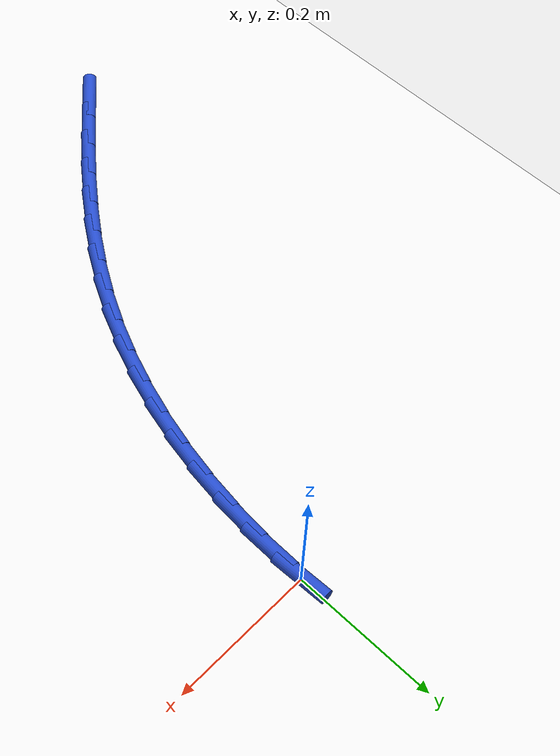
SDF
<sdf version="1.6">
 <world name="default">
  <model name="ground_plane">
   <static>1</static>
   <link name="link">
    <collision name="collision">
     <geometry><plane><normal>0 0 1</normal><size>100 100</size></plane></geometry>
     <surface><friction><ode><mu>100</mu><mu2>50</mu2></ode></friction></surface>
    </collision>
    <visual name="visual">
     <cast_shadows>0</cast_shadows>
     <geometry><plane><normal>0 0 1</normal><size>100 100</size></plane></geometry>
     <material>
      <script><uri>file://media/materials/scripts/gazebo.material</uri><name>Gazebo/WhiteGlow</name></script>
     </material>
    </visual>
   </link>
  </model>
  <model name="line">
   <link name="link_0">
    <pose>-1.3877787807814457e-17 -5.551115123125783e-17 0.01 0 1.57 -1.5294799865286883</pose>
    <collision name="collision">
     <geometry><cylinder><radius>0.01</radius><length>0.08</length></cylinder></geometry>
    </collision>
    <visual name="visual">
     <material>
      <script><name>Gazebo/Blue</name><uri>file://media/materials/scripts/gazebo.material</uri></script>
     </material>
     <geometry><cylinder><radius>0.01</radius><length>0.08</length></cylinder></geometry>
    </visual>
   </link>
   <link name="link_124">
    <pose>-0.33816849042462027 -0.741894768917929 0.01 0 1.57 0.8131857343042772</pose>
    <collision name="collision">
     <geometry><cylinder><radius>0.01</radius><length>0.08</length></cylinder></geometry>
    </collision>
    <visual name="visual">
     <material>
      <script><name>Gazebo/Blue</name><uri>file://media/materials/scripts/gazebo.material</uri></script>
     </material>
     <geometry><cylinder><radius>0.01</radius><length>0.08</length></cylinder></geometry>
    </visual>
   </link>
   <link name="link_125">
    <pose>-0.3006924468834619 -0.7022758932866977 0.01 0 1.57 0.8284494267537817</pose>
    <collision name="collision">
     <geometry><cylinder><radius>0.01</radius><length>0.08</length></cylinder></geometry>
    </collision>
    <visual name="visual">
     <material>
      <script><name>Gazebo/Blue</name><uri>file://media/materials/scripts/gazebo.material</uri></script>
     </material>
     <geometry><cylinder><radius>0.01</radius><length>0.08</length></cylinder></geometry>
    </visual>
   </link>
   <link name="link_126">
    <pose>-0.26454293922409394 -0.6628716919952871 0.01 0 1.57 0.8519206200445119</pose>
    <collision name="collision">
     <geometry><cylinder><radius>0.01</radius><length>0.08</length></cylinder></geometry>
    </collision>
    <visual name="visual">
     <material>
      <script><name>Gazebo/Blue</name><uri>file://media/materials/scripts/gazebo.material</uri></script>
     </material>
     <geometry><cylinder><radius>0.01</radius><length>0.08</length></cylinder></geometry>
    </visual>
   </link>
   <link name="link_127">
    <pose>-0.2299364181062732 -0.6233250296989375 0.01 0 1.57 0.8838420435907903</pose>
    <collision name="collision">
     <geometry><cylinder><radius>0.01</radius><length>0.08</length></cylinder></geometry>
    </collision>
    <visual name="visual">
     <material>
      <script><name>Gazebo/Blue</name><uri>file://media/materials/scripts/gazebo.material</uri></script>
     </material>
     <geometry><cylinder><radius>0.01</radius><length>0.08</length></cylinder></geometry>
    </visual>
   </link>
   <link name="link_128">
    <pose>-0.1970893341897545 -0.5832787710528875 0.01 0 1.57 0.9242673746390263</pose>
    <collision name="collision">
     <geometry><cylinder><radius>0.01</radius><length>0.08</length></cylinder></geometry>
    </collision>
    <visual name="visual">
     <material>
      <script><name>Gazebo/Blue</name><uri>file://media/materials/scripts/gazebo.material</uri></script>
     </material>
     <geometry><cylinder><radius>0.01</radius><length>0.08</length></cylinder></geometry>
    </visual>
   </link>
   <link name="link_129">
    <pose>-0.16621813813429365 -0.5423757807123759 0.01 0 1.57 0.9729803392228309</pose>
    <collision name="collision">
     <geometry><cylinder><radius>0.01</radius><length>0.08</length></cylinder></geometry>
    </collision>
    <visual name="visual">
     <material>
      <script><name>Gazebo/Blue</name><uri>file://media/materials/scripts/gazebo.material</uri></script>
     </material>
     <geometry><cylinder><radius>0.01</radius><length>0.08</length></cylinder></geometry>
    </visual>
   </link>
   <link name="link_130">
    <pose>-0.1375392805996461 -0.5002589233326417 0.01 0 1.57 1.0294121070326585</pose>
    <collision name="collision">
     <geometry><cylinder><radius>0.01</radius><length>0.08</length></cylinder></geometry>
    </collision>
    <visual name="visual">
     <material>
      <script><name>Gazebo/Blue</name><uri>file://media/materials/scripts/gazebo.material</uri></script>
     </material>
     <geometry><cylinder><radius>0.01</radius><length>0.08</length></cylinder></geometry>
    </visual>
   </link>
   <link name="link_131">
    <pose>-0.111269212245567 -0.4565710635689232 0.01 0 1.57 1.0923964315872143</pose>
    <collision name="collision">
     <geometry><cylinder><radius>0.01</radius><length>0.08</length></cylinder></geometry>
    </collision>
    <visual name="visual">
     <material>
      <script><name>Gazebo/Blue</name><uri>file://media/materials/scripts/gazebo.material</uri></script>
     </material>
     <geometry><cylinder><radius>0.01</radius><length>0.08</length></cylinder></geometry>
    </visual>
   </link>
   <link name="link_132">
    <pose>-0.0876205946869144 -0.4109683122306233 0.01 0 1.57 1.1566433995870942</pose>
    <collision name="collision">
     <geometry><cylinder><radius>0.01</radius><length>0.08</length></cylinder></geometry>
    </collision>
    <visual name="visual">
     <material>
      <script><name>Gazebo/Blue</name><uri>file://media/materials/scripts/gazebo.material</uri></script>
     </material>
     <geometry><cylinder><radius>0.01</radius><length>0.08</length></cylinder></geometry>
    </visual>
   </link>
   <link name="link_133">
    <pose>-0.06671764788206164 -0.36341596406335147 0.01 0 1.57 1.2180434834962168</pose>
    <collision name="collision">
     <geometry><cylinder><radius>0.01</radius><length>0.08</length></cylinder></geometry>
    </collision>
    <visual name="visual">
     <material>
      <script><name>Gazebo/Blue</name><uri>file://media/materials/scripts/gazebo.material</uri></script>
     </material>
     <geometry><cylinder><radius>0.01</radius><length>0.08</length></cylinder></geometry>
    </visual>
   </link>
   <link name="link_134">
    <pose>-0.048595425426706765 -0.31419103125544384 0.01 0 1.57 1.2770142993195175</pose>
    <collision name="collision">
     <geometry><cylinder><radius>0.01</radius><length>0.08</length></cylinder></geometry>
    </collision>
    <visual name="visual">
     <material>
      <script><name>Gazebo/Blue</name><uri>file://media/materials/scripts/gazebo.material</uri></script>
     </material>
     <geometry><cylinder><radius>0.01</radius><length>0.08</length></cylinder></geometry>
    </visual>
   </link>
   <link name="link_135">
    <pose>-0.033285046927384716 -0.26358427886128116 0.01 0 1.57 1.3341553273267674</pose>
    <collision name="collision">
     <geometry><cylinder><radius>0.01</radius><length>0.08</length></cylinder></geometry>
    </collision>
    <visual name="visual">
     <material>
      <script><name>Gazebo/Blue</name><uri>file://media/materials/scripts/gazebo.material</uri></script>
     </material>
     <geometry><cylinder><radius>0.01</radius><length>0.08</length></cylinder></geometry>
    </visual>
   </link>
   <link name="link_136">
    <pose>-0.020817631990631066 -0.21188647193524612 0.01 0 1.57 1.3900537923620286</pose>
    <collision name="collision">
     <geometry><cylinder><radius>0.01</radius><length>0.08</length></cylinder></geometry>
    </collision>
    <visual name="visual">
     <material>
      <script><name>Gazebo/Blue</name><uri>file://media/materials/scripts/gazebo.material</uri></script>
     </material>
     <geometry><cylinder><radius>0.01</radius><length>0.08</length></cylinder></geometry>
    </visual>
   </link>
   <link name="link_137">
    <pose>-0.011224300222980658 -0.15938837553171922 0.01 0 1.57 1.4452865744240548</pose>
    <collision name="collision">
     <geometry><cylinder><radius>0.01</radius><length>0.08</length></cylinder></geometry>
    </collision>
    <visual name="visual">
     <material>
      <script><name>Gazebo/Blue</name><uri>file://media/materials/scripts/gazebo.material</uri></script>
     </material>
     <geometry><cylinder><radius>0.01</radius><length>0.08</length></cylinder></geometry>
    </visual>
   </link>
   <link name="link_138">
    <pose>-0.004536171230968603 -0.10638075470508192 0.01 0 1.57 1.5004249918974661</pose>
    <collision name="collision">
     <geometry><cylinder><radius>0.01</radius><length>0.08</length></cylinder></geometry>
    </collision>
    <visual name="visual">
     <material>
      <script><name>Gazebo/Blue</name><uri>file://media/materials/scripts/gazebo.material</uri></script>
     </material>
     <geometry><cylinder><radius>0.01</radius><length>0.08</length></cylinder></geometry>
    </visual>
   </link>
   <link name="link_139">
    <pose>-0.0007843646211300164 -0.053154374509715295 0.01 0 1.57 1.5560410464623178</pose>
    <collision name="collision">
     <geometry><cylinder><radius>0.01</radius><length>0.08</length></cylinder></geometry>
    </collision>
    <visual name="visual">
     <material>
      <script><name>Gazebo/Blue</name><uri>file://media/materials/scripts/gazebo.material</uri></script>
     </material>
     <geometry><cylinder><radius>0.01</radius><length>0.08</length></cylinder></geometry>
    </visual>
   </link>
  </model>
 </world>
</sdf>
